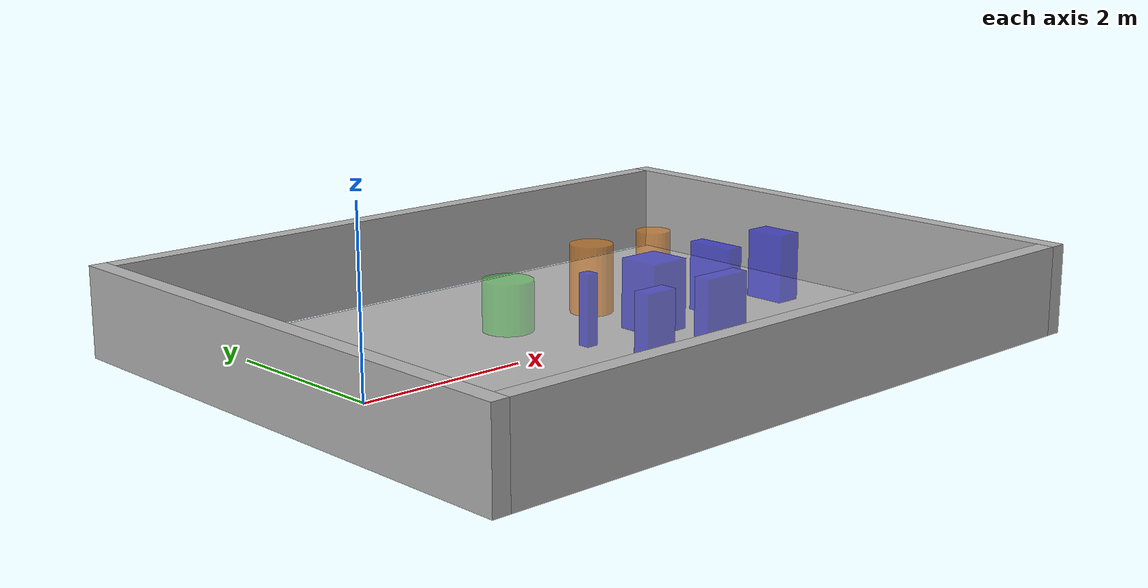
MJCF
<mujoco model="jackal_safe_navigation">
	<compiler angle="radian" meshdir="meshes/" />

    <size njmax="3000" nconmax="1000" />
    <option gravity="0 0 -9.8"/>
	<option timestep="0.002">
		<flag warmstart="enable"></flag>
	</option>

    <default>
        <geom condim="6" density="5" rgba="0.7 0.7 0.7 1" size=".05" type="sphere"/>
        <joint damping=".001"/>
        <site size="0.032" type="sphere"/>
        <velocity ctrlrange="-1 1" ctrllimited="true" forcerange="-1 1" forcelimited="true"/>
    </default>

    <asset>
        <!--Meshes-->
        <mesh name="base" file="tbot.stl" />
        <!--mesh name="person" file="person3.stl" /-->

        <!--Textures-->
        <texture name="floor_tex"   type="2d" builtin="checker" rgb1="0.7 0.7 0.7" rgb2="0.9 0.9 0.9" width="100" height="100" />

        <!--Materials-->
        <material name="floor_mat" texture="floor_tex" shininess="0.3" texrepeat="4 3" specular="0.5" reflectance="0.2" />
        <material name="wall_mat" rgba="0.7 0.7 0.7 1" shininess="0.8" specular="0.7" reflectance="0.5" />
        <material name="bench_mat" texture="floor_tex" shininess="0.1" specular="0.5" reflectance="0.2"/>
    </asset>

	<worldbody>
		<light directional="true" ambient="0.2 0.2 0.2" diffuse="0.4 0.4 0.4" specular="0.1 0.1 0.1" castshadow="false" pos="0 0 4" dir="0 0 -1" name="light0" />

        <!-- Floor Property -->
        <geom name='floor' material="floor_mat" pos='3 0 0' size='4.0 3.0 0.1'  type='plane' condim="3"/>

        <!-- Wall Property -->
        <geom name='wall1' material="wall_mat" pos='3.0 3.1 0.5' size='3.9 0.1 0.5'  type='box' condim="6" group="2"/>
        <geom name='wall2' material="wall_mat" pos='3.0 -3.1 0.5' size='3.9 0.1 0.5'  type='box' condim="6" group="2"/>
        <geom name='wall3' material="wall_mat" pos='7.0 0 0.5' size='0.1 3.2 0.5'  type='box' condim="6" group="2"/>
        <geom name='wall4' material="wall_mat" pos='-1.0 0 0.5' size='0.1 3.2 0.5'  type='box' condim="6" group="2"/>

		<!-- camera: front view -->
		<camera mode="fixed" name="frontview" pos="3.0 0 1.85" quat="0.56 0.43 0.43 0.56"/>

		<!-- Robot -->
		<body name="robot" pos="0 0 0.06344">
            <site name="robot" pos="0 0 0"/>
            <joint type="free" name="robot" damping="0"/>

            <geom pos="0 0 0" quat="1 0 0 0" type="mesh" contype="0" conaffinity="0" group="1" rgba="0.15 0.15 0.15 1" mesh="base"/>

            <geom name="robot" size="0.18 0.2" pos="0 0 0.15" type="cylinder" rgba="0.2 0.2 0.2 1" group="5" mass="4.0"/>

            <body name="left" pos="0.0 0.1 0.0345">
                <joint type="hinge" name="left" axis="0 1 0"/>
                <geom type="cylinder" name="left" size="0.098 0.02" quat="0.707107 0.707107 0 0" group="1" condim="4" mass=".5"/>
            </body>

            <body name="right" pos="0.0 -0.1 0.0345">
                <joint type="hinge" name="right" axis="0 1 0"/>
                <geom type="cylinder" name="right" size="0.098 0.02" quat="0.707107 0.707107 0 0" group="1" condim="4" mass=".5"/>
            </body>

            <body name="front" pos="0.131 0 -0.0155">
                <joint name="front" type="ball"/>
                <geom name="front" size="0.048" rgba="0.2 1.0 0.4 1" group="1" mass=".5"/>
            </body>
            <body name="rear" pos="-0.131 0 -0.0155">
                <joint name="rear" type="ball"/>
                <geom name="rear" size="0.048" group="1" mass=".5"/>
            </body>
		</body>

        <body name="box1" pos="6.0 0.0 0.4">
            <site name="box1" pos="0 0 0" rgba="0 0 1 0"/>
            <joint type="free" name="box1" frictionloss="0" damping="0" />
            <geom name="box1" type="box" size="0.15 0.25 0.4" rgba="0 0 1 0.5" mass="0.1" group="2"/>
        </body>
        <body name="box2" pos="5.0 0.0 0.4">
            <site name="box2" pos="0 0 0" rgba="0 0 1 0"/>
            <joint type="free" name="box2" frictionloss="0" damping="0" />
            <geom name="box2" type="box" size="0.1 0.3 0.4" rgba="0 0 1 0.5" mass="0.1" group="2"/>
        </body>
        <body name="box3" pos="4.0 0.0 0.4">
            <site name="box3" pos="0 0 0" rgba="0 0 1 0"/>
            <joint type="free" name="box3" frictionloss="0" damping="0" />
            <geom name="box3" type="box" size="0.25 0.25 0.4" rgba="0 0 .9 0.5" mass="0.1" group="2"/>
        </body>
        <body name="box4" pos="3.0 0.0 0.4">
            <site name="box4" pos="0 0 0" rgba="0 0 1 0"/>
            <joint type="free" name="box4" frictionloss="0" damping="0" />
            <geom name="box4" type="box" size="0.07 0.07 0.4" rgba="0 0 .9 0.5" mass="0.1" group="2"/>
        </body>
        <body name="box5" pos="4.0 -1.0 0.4">
            <site name="box5" pos="0 0 0" rgba="0 0 1 0"/>
            <joint type="free" name="box5" frictionloss="0" damping="0" />
            <geom name="box5" type="box" size="0.3 0.1 0.4" rgba="0 0 .9 0.5" mass="0.1" group="2"/>
        </body>
        <body name="box6" pos="3.0 -1.0 0.4">
            <site name="box6" pos="0 0 0" rgba="0 0 1 0"/>
            <joint type="free" name="box6" frictionloss="0" damping="0" />
            <geom name="box6" type="box" size="0.2 0.1 0.4" rgba="0 0 .9 0.5" mass="0.1" group="2"/>
        </body>
        <body name="box7" pos="3.0 -1.0 0.4">
            <site name="box7" pos="0 0 0" rgba="0 0 1 0"/>
            <joint type="free" name="box7" frictionloss="0" damping="0" />
            <geom name="box7" type="box" size="0.03 0.03 0.4" rgba="0 0 .9 0.5" mass="0.1" group="2"/>
        </body>
        <!-- CYLINDERS -->
        <body name="box8" pos="3.0 -1.0 0.4">
            <site name="box8" pos="0 0 0" rgba="0 0 1 0"/>
            <joint type="free" name="box8" frictionloss="0" damping="0" />
            <geom name="box8" type="cylinder" size="0.05 0.4" rgba="1 .5 0 0.5" mass="0.1" group="2"/>
        </body>
        <body name="box9" pos="5.0 1.0 0.4">
            <site name="box9" pos="0 0 0" rgba="0 0 1 0"/>
            <joint type="free" name="box9" frictionloss="0" damping="0" />
            <geom name="box9" type="cylinder" size="0.2 0.4" rgba="1 .5 0 0.5" mass="0.1" group="2"/>
        </body>
        <body name="box10" pos="4.0 1.0 0.4">
            <site name="box10" pos="0 0 0" rgba="0 0 1 0"/>
            <joint type="free" name="box10" frictionloss="0" damping="0" />
            <geom name="box10" type="cylinder" size="0.25 0.4" rgba="1 .5 0 0.5" mass="0.1" group="2"/>
        </body>

        <!-- goal -->
        <body name="goal" pos="1.0 -1.0 1.0">
            <site name="goal" pos="0 0 0" rgba="0 0 1 0"/>
            <joint type="free" name="goal" frictionloss="0" damping="0" />
            <geom type="cylinder" size="0.25 0.25 0.25" contype="0" conaffinity="0" group="1" rgba="0 0.9 0 0.3" mass="0.1"/>
        </body>

	</worldbody>

    <sensor>
        <!-- Used for observation -->
        <accelerometer site="robot" name="accelerometer"/>
        <velocimeter site="robot" name="velocimeter"/>
        <gyro site="robot" name="gyro"/>
    </sensor>

    <!--ACTUATORS-->
    <actuator>

        <motor gear="0.7 0 0 0 0 0" joint="left" name="left"/>
        <motor gear="0.7 0 0 0 0 0" joint="right" name="right"/>

    </actuator>
</mujoco>
